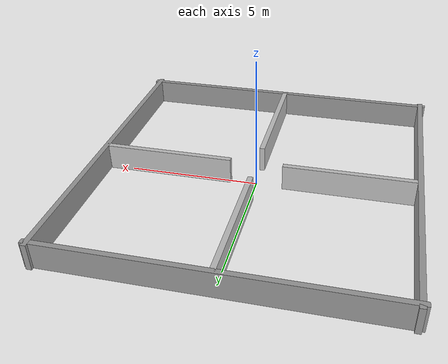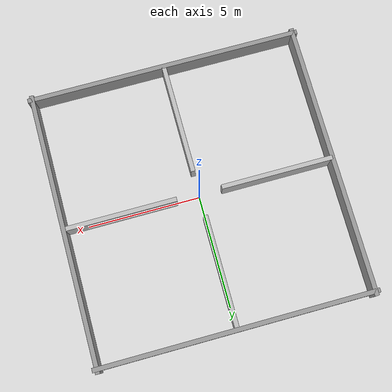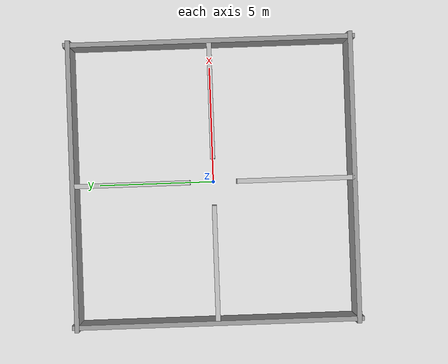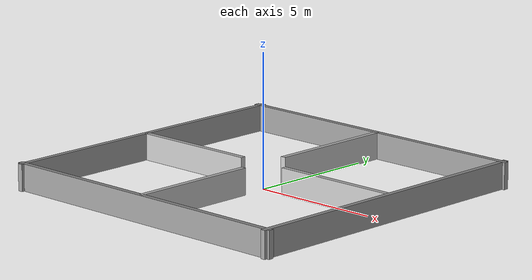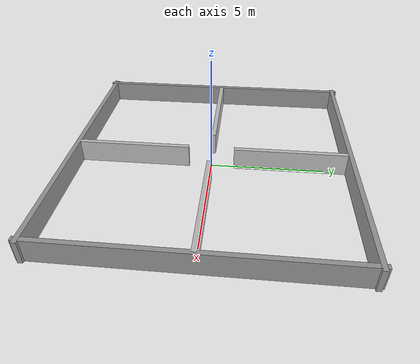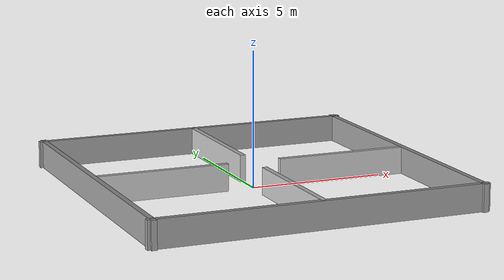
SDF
<?xml version="1.0"?>
<sdf version="1.6">
  <world name="indoor_rooms">
    <physics name="ode" type="ode">
      <real_time_update_rate>50.0</real_time_update_rate>
      <max_step_size>0.02</max_step_size>
    </physics>
    <gravity>0 0 -9.80665</gravity>
    <plugin name="gazebo_ros_state" filename="libgazebo_ros_state.so">
      <ros><namespace>/</namespace></ros>
      <update_rate>10.0</update_rate>
    </plugin>
    <include><uri>model://sun</uri></include>
    <model name="ground_plane">
      <static>true</static><pose>0 0 0 0 0 0</pose>
      <link name="link">
        <collision name="collision">
          <geometry><plane><normal>0 0 1</normal><size>50 50</size></plane></geometry>
          <surface><friction><ode><mu>100</mu><mu2>50</mu2></ode></friction></surface>
        </collision>
      </link>
    </model>
    <!-- 外墙 12x12 (x,y∈[-6,6]) -->
    <model name="wall_north"><static>true</static><pose>0 6 0.5 0 0 0</pose>
      <link name="link">
        <collision name="c"><geometry><box><size>12.4 0.2 1.0</size></box></geometry></collision>
        <visual name="v"><geometry><box><size>12.4 0.2 1.0</size></box></geometry>
          <material><ambient>0.6 0.6 0.6 1</ambient></material></visual>
      </link></model>
    <model name="wall_south"><static>true</static><pose>0 -6 0.5 0 0 0</pose>
      <link name="link">
        <collision name="c"><geometry><box><size>12.4 0.2 1.0</size></box></geometry></collision>
        <visual name="v"><geometry><box><size>12.4 0.2 1.0</size></box></geometry>
          <material><ambient>0.6 0.6 0.6 1</ambient></material></visual>
      </link></model>
    <model name="wall_east"><static>true</static><pose>6 0 0.5 0 0 0</pose>
      <link name="link">
        <collision name="c"><geometry><box><size>0.2 12.4 1.0</size></box></geometry></collision>
        <visual name="v"><geometry><box><size>0.2 12.4 1.0</size></box></geometry>
          <material><ambient>0.6 0.6 0.6 1</ambient></material></visual>
      </link></model>
    <model name="wall_west"><static>true</static><pose>-6 0 0.5 0 0 0</pose>
      <link name="link">
        <collision name="c"><geometry><box><size>0.2 12.4 1.0</size></box></geometry></collision>
        <visual name="v"><geometry><box><size>0.2 12.4 1.0</size></box></geometry>
          <material><ambient>0.6 0.6 0.6 1</ambient></material></visual>
      </link></model>
    <!-- 水平内墙 (y=0): 两段, 中间留 2m 门洞 x∈[-1,1] -->
    <model name="wall_in_h_w"><static>true</static><pose>-3.5 0 0.5 0 0 0</pose>
      <link name="link">
        <collision name="c"><geometry><box><size>5.0 0.2 1.0</size></box></geometry></collision>
        <visual name="v"><geometry><box><size>5.0 0.2 1.0</size></box></geometry>
          <material><ambient>0.75 0.75 0.75 1</ambient></material></visual>
      </link></model>
    <model name="wall_in_h_e"><static>true</static><pose>3.5 0 0.5 0 0 0</pose>
      <link name="link">
        <collision name="c"><geometry><box><size>5.0 0.2 1.0</size></box></geometry></collision>
        <visual name="v"><geometry><box><size>5.0 0.2 1.0</size></box></geometry>
          <material><ambient>0.75 0.75 0.75 1</ambient></material></visual>
      </link></model>
    <!-- 垂直内墙 (x=0): 两段, 中间留 2m 门洞 y∈[-1,1] -->
    <model name="wall_in_v_s"><static>true</static><pose>0 -3.5 0.5 0 0 0</pose>
      <link name="link">
        <collision name="c"><geometry><box><size>0.2 5.0 1.0</size></box></geometry></collision>
        <visual name="v"><geometry><box><size>0.2 5.0 1.0</size></box></geometry>
          <material><ambient>0.75 0.75 0.75 1</ambient></material></visual>
      </link></model>
    <model name="wall_in_v_n"><static>true</static><pose>0 3.5 0.5 0 0 0</pose>
      <link name="link">
        <collision name="c"><geometry><box><size>0.2 5.0 1.0</size></box></geometry></collision>
        <visual name="v"><geometry><box><size>0.2 5.0 1.0</size></box></geometry>
          <material><ambient>0.75 0.75 0.75 1</ambient></material></visual>
      </link></model>
  </world>
</sdf>
